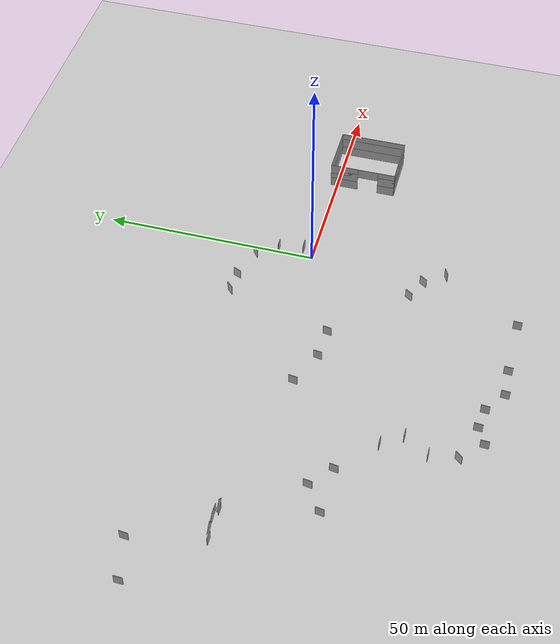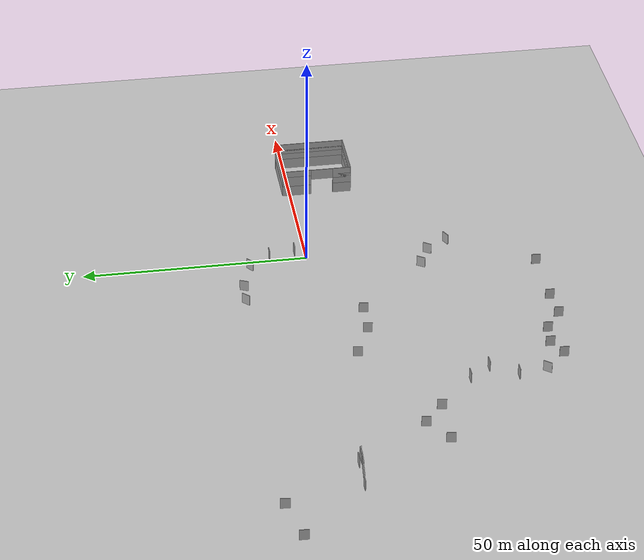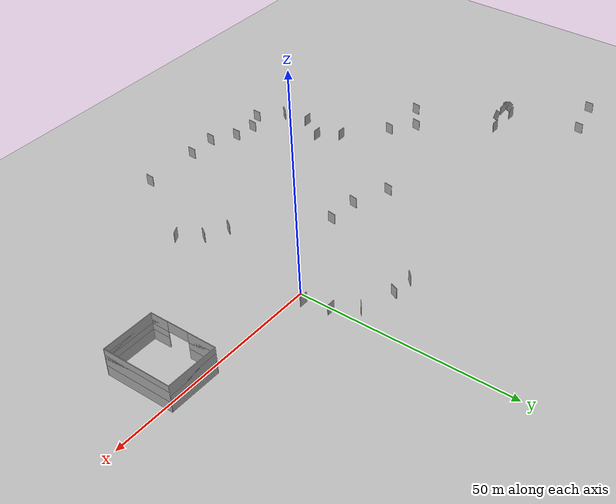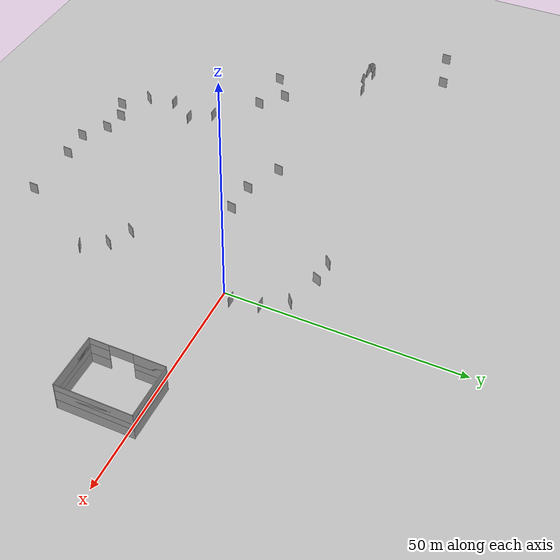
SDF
<sdf version="1.6">
 <world name="default">
  <model name="ground_plane">
   <static>1</static>
   <link name="link">
    <collision name="collision">
     <geometry><plane><normal>0 0 1</normal><size>100 100</size></plane></geometry>
     <surface><friction><ode><mu>100</mu><mu2>50</mu2></ode></friction></surface>
    </collision>
    <visual name="visual">
     <cast_shadows>0</cast_shadows>
     <geometry><plane><normal>0 0 1</normal><size>100 100</size></plane></geometry>
     <material>
      <script><uri>file://media/materials/scripts/gazebo.material</uri><name>Gazebo/Grey</name></script>
     </material>
    </visual>
   </link>
  </model>
  <model name="PaperTestTunnelHouse">
   <pose>31.9195 -6.3195 0 0 -0 0</pose>
   <link name="Wall_10">
    <collision name="Wall_10_Collision">
     <geometry><box><size>4.25 0.15 2.5</size></box></geometry>
     <pose>0 0 1.25 0 -0 0</pose>
    </collision>
    <visual name="Wall_10_Visual">
     <pose>0 0 1.25 0 -0 0</pose>
     <geometry><box><size>4.25 0.15 2.5</size></box></geometry>
     <material>
      <script><uri>file://media/materials/scripts/gazebo.material</uri><name>Gazebo/Grey</name></script>
      <ambient>1 1 1 1</ambient>
     </material>
     <meta><layer>0</layer></meta>
    </visual>
    <pose>-5.925 -5.875 0 0 -0 1.5708</pose>
   </link>
   <link name="Wall_6">
    <collision name="Wall_6_Collision">
     <geometry><box><size>6.75 0.15 2.5</size></box></geometry>
     <pose>0 0 1.25 0 -0 0</pose>
    </collision>
    <visual name="Wall_6_Visual">
     <pose>0 0 1.25 0 -0 0</pose>
     <geometry><box><size>6.75 0.15 2.5</size></box></geometry>
     <material>
      <script><uri>file://media/materials/scripts/gazebo.material</uri><name>Gazebo/Grey</name></script>
      <ambient>1 1 1 1</ambient>
     </material>
     <meta><layer>0</layer></meta>
    </visual>
    <pose>-5.925 4.625 0 0 -0 1.5708</pose>
   </link>
   <link name="Wall_7">
    <collision name="Wall_7_Collision">
     <geometry><box><size>12 0.15 2.5</size></box></geometry>
     <pose>0 0 1.25 0 -0 0</pose>
    </collision>
    <visual name="Wall_7_Visual">
     <pose>0 0 1.25 0 -0 0</pose>
     <geometry><box><size>12 0.15 2.5</size></box></geometry>
     <material>
      <script><uri>file://media/materials/scripts/gazebo.material</uri><name>Gazebo/Grey</name></script>
      <ambient>1 1 1 1</ambient>
     </material>
     <meta><layer>0</layer></meta>
    </visual>
    <pose>-0 7.925 0 0 -0 0</pose>
   </link>
   <link name="Wall_8">
    <collision name="Wall_8_Collision">
     <geometry><box><size>16 0.15 2.5</size></box></geometry>
     <pose>0 0 1.25 0 -0 0</pose>
    </collision>
    <visual name="Wall_8_Visual">
     <pose>0 0 1.25 0 -0 0</pose>
     <geometry><box><size>16 0.15 2.5</size></box></geometry>
     <material>
      <script><uri>file://media/materials/scripts/gazebo.material</uri><name>Gazebo/Grey</name></script>
      <ambient>1 1 1 1</ambient>
     </material>
     <meta><layer>0</layer></meta>
    </visual>
    <pose>5.925 0 0 0 -0 -1.5708</pose>
   </link>
   <link name="Wall_9">
    <collision name="Wall_9_Collision">
     <geometry><box><size>12 0.15 2.5</size></box></geometry>
     <pose>0 0 1.25 0 -0 0</pose>
    </collision>
    <visual name="Wall_9_Visual">
     <pose>0 0 1.25 0 -0 0</pose>
     <geometry><box><size>12 0.15 2.5</size></box></geometry>
     <material>
      <script><uri>file://media/materials/scripts/gazebo.material</uri><name>Gazebo/Grey</name></script>
      <ambient>1 1 1 1</ambient>
     </material>
     <meta><layer>0</layer></meta>
    </visual>
    <pose>-0 -7.925 0 0 -0 3.14159</pose>
   </link>
   <static>1</static>
  </model>
  <model name="PaperTestTunnelHouse_0">
   <pose>31.9195 -6.319 2.5 0 -0 0</pose>
   <link name="Wall_10">
    <collision name="Wall_10_Collision">
     <geometry><box><size>4.25 0.15 2.5</size></box></geometry>
     <pose>0 0 1.25 0 -0 0</pose>
    </collision>
    <visual name="Wall_10_Visual">
     <pose>0 0 1.25 0 -0 0</pose>
     <geometry><box><size>4.25 0.15 2.5</size></box></geometry>
     <material>
      <script><uri>file://media/materials/scripts/gazebo.material</uri><name>Gazebo/Grey</name></script>
      <ambient>1 1 1 1</ambient>
     </material>
     <meta><layer>0</layer></meta>
    </visual>
    <pose>-5.925 -5.875 0 0 -0 1.5708</pose>
   </link>
   <link name="Wall_6">
    <collision name="Wall_6_Collision">
     <geometry><box><size>6.75 0.15 2.5</size></box></geometry>
     <pose>0 0 1.25 0 -0 0</pose>
    </collision>
    <visual name="Wall_6_Visual">
     <pose>0 0 1.25 0 -0 0</pose>
     <geometry><box><size>6.75 0.15 2.5</size></box></geometry>
     <material>
      <script><uri>file://media/materials/scripts/gazebo.material</uri><name>Gazebo/Grey</name></script>
      <ambient>1 1 1 1</ambient>
     </material>
     <meta><layer>0</layer></meta>
    </visual>
    <pose>-5.925 4.625 0 0 -0 1.5708</pose>
   </link>
   <link name="Wall_7">
    <collision name="Wall_7_Collision">
     <geometry><box><size>12 0.15 2.5</size></box></geometry>
     <pose>0 0 1.25 0 -0 0</pose>
    </collision>
    <visual name="Wall_7_Visual">
     <pose>0 0 1.25 0 -0 0</pose>
     <geometry><box><size>12 0.15 2.5</size></box></geometry>
     <material>
      <script><uri>file://media/materials/scripts/gazebo.material</uri><name>Gazebo/Grey</name></script>
      <ambient>1 1 1 1</ambient>
     </material>
     <meta><layer>0</layer></meta>
    </visual>
    <pose>-0 7.925 0 0 -0 0</pose>
   </link>
   <link name="Wall_8">
    <collision name="Wall_8_Collision">
     <geometry><box><size>16 0.15 2.5</size></box></geometry>
     <pose>0 0 1.25 0 -0 0</pose>
    </collision>
    <visual name="Wall_8_Visual">
     <pose>0 0 1.25 0 -0 0</pose>
     <geometry><box><size>16 0.15 2.5</size></box></geometry>
     <material>
      <script><uri>file://media/materials/scripts/gazebo.material</uri><name>Gazebo/Grey</name></script>
      <ambient>1 1 1 1</ambient>
     </material>
     <meta><layer>0</layer></meta>
    </visual>
    <pose>5.925 0 0 0 -0 -1.5708</pose>
   </link>
   <link name="Wall_9">
    <collision name="Wall_9_Collision">
     <geometry><box><size>12 0.15 2.5</size></box></geometry>
     <pose>0 0 1.25 0 -0 0</pose>
    </collision>
    <visual name="Wall_9_Visual">
     <pose>0 0 1.25 0 -0 0</pose>
     <geometry><box><size>12 0.15 2.5</size></box></geometry>
     <material>
      <script><uri>file://media/materials/scripts/gazebo.material</uri><name>Gazebo/Grey</name></script>
      <ambient>1 1 1 1</ambient>
     </material>
     <meta><layer>0</layer></meta>
    </visual>
    <pose>-0 -7.925 0 0 -0 3.14159</pose>
   </link>
   <static>1</static>
  </model>
  <model name="5mWall">
   <pose>25.971 -7.56033 4 0 -0 0</pose>
   <link name="Wall_0">
    <collision name="Wall_0_Collision">
     <geometry><box><size>5 0.15 2.5</size></box></geometry>
     <pose>0 0 1.25 0 -0 0</pose>
    </collision>
    <visual name="Wall_0_Visual">
     <pose>0 0 1.25 0 -0 0</pose>
     <geometry><box><size>5 0.15 2.5</size></box></geometry>
     <material>
      <script><uri>file://media/materials/scripts/gazebo.material</uri><name>Gazebo/Grey</name></script>
      <ambient>1 1 1 1</ambient>
     </material>
     <meta><layer>0</layer></meta>
    </visual>
    <pose>0 -0 0 0 -0 1.5708</pose>
   </link>
   <static>1</static>
  </model>
  <model name="PaperTestTunnelHouse_1">
   <pose>31.9195 -6.319 4 0 -0 0</pose>
   <link name="Wall_10">
    <collision name="Wall_10_Collision">
     <geometry><box><size>4.25 0.15 2.5</size></box></geometry>
     <pose>0 0 1.25 0 -0 0</pose>
    </collision>
    <visual name="Wall_10_Visual">
     <pose>0 0 1.25 0 -0 0</pose>
     <geometry><box><size>4.25 0.15 2.5</size></box></geometry>
     <material>
      <script><uri>file://media/materials/scripts/gazebo.material</uri><name>Gazebo/Grey</name></script>
      <ambient>1 1 1 1</ambient>
     </material>
     <meta><layer>0</layer></meta>
    </visual>
    <pose>-5.925 -5.875 0 0 -0 1.5708</pose>
   </link>
   <link name="Wall_6">
    <collision name="Wall_6_Collision">
     <geometry><box><size>6.75 0.15 2.5</size></box></geometry>
     <pose>0 0 1.25 0 -0 0</pose>
    </collision>
    <visual name="Wall_6_Visual">
     <pose>0 0 1.25 0 -0 0</pose>
     <geometry><box><size>6.75 0.15 2.5</size></box></geometry>
     <material>
      <script><uri>file://media/materials/scripts/gazebo.material</uri><name>Gazebo/Grey</name></script>
      <ambient>1 1 1 1</ambient>
     </material>
     <meta><layer>0</layer></meta>
    </visual>
    <pose>-5.925 4.625 0 0 -0 1.5708</pose>
   </link>
   <link name="Wall_7">
    <collision name="Wall_7_Collision">
     <geometry><box><size>12 0.15 2.5</size></box></geometry>
     <pose>0 0 1.25 0 -0 0</pose>
    </collision>
    <visual name="Wall_7_Visual">
     <pose>0 0 1.25 0 -0 0</pose>
     <geometry><box><size>12 0.15 2.5</size></box></geometry>
     <material>
      <script><uri>file://media/materials/scripts/gazebo.material</uri><name>Gazebo/Grey</name></script>
      <ambient>1 1 1 1</ambient>
     </material>
     <meta><layer>0</layer></meta>
    </visual>
    <pose>-0 7.925 0 0 -0 0</pose>
   </link>
   <link name="Wall_8">
    <collision name="Wall_8_Collision">
     <geometry><box><size>16 0.15 2.5</size></box></geometry>
     <pose>0 0 1.25 0 -0 0</pose>
    </collision>
    <visual name="Wall_8_Visual">
     <pose>0 0 1.25 0 -0 0</pose>
     <geometry><box><size>16 0.15 2.5</size></box></geometry>
     <material>
      <script><uri>file://media/materials/scripts/gazebo.material</uri><name>Gazebo/Grey</name></script>
      <ambient>1 1 1 1</ambient>
     </material>
     <meta><layer>0</layer></meta>
    </visual>
    <pose>5.925 0 0 0 -0 -1.5708</pose>
   </link>
   <link name="Wall_9">
    <collision name="Wall_9_Collision">
     <geometry><box><size>12 0.15 2.5</size></box></geometry>
     <pose>0 0 1.25 0 -0 0</pose>
    </collision>
    <visual name="Wall_9_Visual">
     <pose>0 0 1.25 0 -0 0</pose>
     <geometry><box><size>12 0.15 2.5</size></box></geometry>
     <material>
      <script><uri>file://media/materials/scripts/gazebo.material</uri><name>Gazebo/Grey</name></script>
      <ambient>1 1 1 1</ambient>
     </material>
     <meta><layer>0</layer></meta>
    </visual>
    <pose>-0 -7.925 0 0 -0 3.14159</pose>
   </link>
   <static>1</static>
  </model>
  <model name="2mWall_3">
   <pose>2.10228 2.41901 0 0 -0 0</pose>
   <link name="Wall_0">
    <collision name="Wall_0_Collision">
     <geometry><box><size>2 0.15 2.5</size></box></geometry>
     <pose>0 0 1.25 0 -0 0</pose>
    </collision>
    <visual name="Wall_0_Visual">
     <pose>0 0 1.25 0 -0 0</pose>
     <geometry><box><size>2 0.15 2.5</size></box></geometry>
     <material>
      <script><uri>file://media/materials/scripts/gazebo.material</uri><name>Gazebo/Grey</name></script>
      <ambient>1 1 1 1</ambient>
     </material>
     <meta><layer>0</layer></meta>
    </visual>
   </link>
   <static>1</static>
  </model>
  <model name="2mWall_4">
   <pose>-10.1702 15.3219 0 0 -0 1.16983</pose>
   <link name="Wall_0">
    <collision name="Wall_0_Collision">
     <geometry><box><size>2 0.15 2.5</size></box></geometry>
     <pose>0 0 1.25 0 -0 0</pose>
    </collision>
    <visual name="Wall_0_Visual">
     <pose>0 0 1.25 0 -0 0</pose>
     <geometry><box><size>2 0.15 2.5</size></box></geometry>
     <material>
      <script><uri>file://media/materials/scripts/gazebo.material</uri><name>Gazebo/Grey</name></script>
      <ambient>1 1 1 1</ambient>
     </material>
     <meta><layer>0</layer></meta>
    </visual>
   </link>
   <static>1</static>
  </model>
  <model name="2mWall_7">
   <pose>-49.3322 -27.3207 0 0 -0 0</pose>
   <link name="Wall_0">
    <collision name="Wall_0_Collision">
     <geometry><box><size>2 0.15 2.5</size></box></geometry>
     <pose>0 0 1.25 0 -0 0</pose>
    </collision>
    <visual name="Wall_0_Visual">
     <pose>0 0 1.25 0 -0 0</pose>
     <geometry><box><size>2 0.15 2.5</size></box></geometry>
     <material>
      <script><uri>file://media/materials/scripts/gazebo.material</uri><name>Gazebo/Grey</name></script>
      <ambient>1 1 1 1</ambient>
     </material>
     <meta><layer>0</layer></meta>
    </visual>
   </link>
   <static>1</static>
  </model>
  <model name="2mWall_11">
   <pose>-80.5459 0.435841 0 0 -0 0</pose>
   <link name="Wall_0">
    <collision name="Wall_0_Collision">
     <geometry><box><size>2 0.15 2.5</size></box></geometry>
     <pose>0 0 1.25 0 -0 0</pose>
    </collision>
    <visual name="Wall_0_Visual">
     <pose>0 0 1.25 0 -0 0</pose>
     <geometry><box><size>2 0.15 2.5</size></box></geometry>
     <material>
      <script><uri>file://media/materials/scripts/gazebo.material</uri><name>Gazebo/Grey</name></script>
      <ambient>1 1 1 1</ambient>
     </material>
     <meta><layer>0</layer></meta>
    </visual>
   </link>
   <static>1</static>
  </model>
  <model name="2mWall_11_clone">
   <pose>-73.3311 0.380501 0 0 -0 0</pose>
   <link name="Wall_0">
    <collision name="Wall_0_Collision">
     <geometry><box><size>2 0.15 2.5</size></box></geometry>
     <pose>0 0 1.25 0 -0 0</pose>
    </collision>
    <visual name="Wall_0_Visual">
     <pose>0 0 1.25 0 -0 0</pose>
     <geometry><box><size>2 0.15 2.5</size></box></geometry>
     <material>
      <script><uri>file://media/materials/scripts/gazebo.material</uri><name>Gazebo/Grey</name></script>
      <ambient>1 1 1 1</ambient>
     </material>
     <meta><layer>0</layer></meta>
    </visual>
   </link>
   <static>1</static>
  </model>
  <model name="2mWall_11_clone_0">
   <pose>-80.3991 0.506506 2.684 0 0.816528 0</pose>
   <link name="Wall_0">
    <collision name="Wall_0_Collision">
     <geometry><box><size>2 0.15 2.5</size></box></geometry>
     <pose>0 0 1.25 0 -0 0</pose>
    </collision>
    <visual name="Wall_0_Visual">
     <pose>0 0 1.25 0 -0 0</pose>
     <geometry><box><size>2 0.15 2.5</size></box></geometry>
     <material>
      <script><uri>file://media/materials/scripts/gazebo.material</uri><name>Gazebo/Grey</name></script>
      <ambient>1 1 1 1</ambient>
     </material>
     <meta><layer>0</layer></meta>
    </visual>
   </link>
   <static>1</static>
  </model>
  <model name="2mWall_11_clone_0_clone">
   <pose>-75.059 0.119832 2.90318 0 0.816528 0</pose>
   <link name="Wall_0">
    <collision name="Wall_0_Collision">
     <geometry><box><size>2 0.15 2.5</size></box></geometry>
     <pose>0 0 1.25 0 -0 0</pose>
    </collision>
    <visual name="Wall_0_Visual">
     <pose>0 0 1.25 0 -0 0</pose>
     <geometry><box><size>2 0.15 2.5</size></box></geometry>
     <material>
      <script><uri>file://media/materials/scripts/gazebo.material</uri><name>Gazebo/Grey</name></script>
      <ambient>1 1 1 1</ambient>
     </material>
     <meta><layer>0</layer></meta>
    </visual>
   </link>
   <static>1</static>
  </model>
  <model name="2mWall_11_clone_0_clone_0">
   <pose>-77.5474 0.489779 4.61692 3.14159 1.52824 3.14159</pose>
   <link name="Wall_0">
    <collision name="Wall_0_Collision">
     <geometry><box><size>2 0.15 2.5</size></box></geometry>
     <pose>0 0 1.25 0 -0 0</pose>
    </collision>
    <visual name="Wall_0_Visual">
     <pose>0 0 1.25 0 -0 0</pose>
     <geometry><box><size>2 0.15 2.5</size></box></geometry>
     <material>
      <script><uri>file://media/materials/scripts/gazebo.material</uri><name>Gazebo/Grey</name></script>
      <ambient>1 1 1 1</ambient>
     </material>
     <meta><layer>0</layer></meta>
    </visual>
   </link>
   <static>1</static>
  </model>
  <model name="2mWall_11_clone_0_clone_0_clone">
   <pose>-78.6518 0.388218 4.2827 0 1.18388 0</pose>
   <link name="Wall_0">
    <collision name="Wall_0_Collision">
     <geometry><box><size>2 0.15 2.5</size></box></geometry>
     <pose>0 0 1.25 0 -0 0</pose>
    </collision>
    <visual name="Wall_0_Visual">
     <pose>0 0 1.25 0 -0 0</pose>
     <geometry><box><size>2 0.15 2.5</size></box></geometry>
     <material>
      <script><uri>file://media/materials/scripts/gazebo.material</uri><name>Gazebo/Grey</name></script>
      <ambient>1 1 1 1</ambient>
     </material>
     <meta><layer>0</layer></meta>
    </visual>
   </link>
   <static>1</static>
  </model>
  <model name="2mWall">
   <pose>-34.7664 -47.2587 0 0 -0 1.51711</pose>
   <link name="Wall_0">
    <collision name="Wall_0_Collision">
     <geometry><box><size>2 0.15 2.5</size></box></geometry>
     <pose>0 0 1.25 0 -0 0</pose>
    </collision>
    <visual name="Wall_0_Visual">
     <pose>0 0 1.25 0 -0 0</pose>
     <geometry><box><size>2 0.15 2.5</size></box></geometry>
     <material>
      <script><uri>file://media/materials/scripts/gazebo.material</uri><name>Gazebo/Grey</name></script>
      <ambient>1 1 1 1</ambient>
     </material>
     <meta><layer>0</layer></meta>
    </visual>
   </link>
   <static>1</static>
  </model>
  <model name="2mWall_clone">
   <pose>-22.9675 -50.415 0 0 -0 1.51711</pose>
   <link name="Wall_0">
    <collision name="Wall_0_Collision">
     <geometry><box><size>2 0.15 2.5</size></box></geometry>
     <pose>0 0 1.25 0 -0 0</pose>
    </collision>
    <visual name="Wall_0_Visual">
     <pose>0 0 1.25 0 -0 0</pose>
     <geometry><box><size>2 0.15 2.5</size></box></geometry>
     <material>
      <script><uri>file://media/materials/scripts/gazebo.material</uri><name>Gazebo/Grey</name></script>
      <ambient>1 1 1 1</ambient>
     </material>
     <meta><layer>0</layer></meta>
    </visual>
   </link>
   <static>1</static>
  </model>
  <model name="2mWall_17">
   <pose>-84.3059 16.8578 0 0 -0 1.47872</pose>
   <link name="Wall_0">
    <collision name="Wall_0_Collision">
     <geometry><box><size>2 0.15 2.5</size></box></geometry>
     <pose>0 0 1.25 0 -0 0</pose>
    </collision>
    <visual name="Wall_0_Visual">
     <pose>0 0 1.25 0 -0 0</pose>
     <geometry><box><size>2 0.15 2.5</size></box></geometry>
     <material>
      <script><uri>file://media/materials/scripts/gazebo.material</uri><name>Gazebo/Grey</name></script>
      <ambient>1 1 1 1</ambient>
     </material>
     <meta><layer>0</layer></meta>
    </visual>
   </link>
   <static>1</static>
  </model>
  <model name="2mWall_18">
   <pose>-94.0413 14.5273 0 0 0 -1.59625</pose>
   <link name="Wall_0">
    <collision name="Wall_0_Collision">
     <geometry><box><size>2 0.15 2.5</size></box></geometry>
     <pose>0 0 1.25 0 -0 0</pose>
    </collision>
    <visual name="Wall_0_Visual">
     <pose>0 0 1.25 0 -0 0</pose>
     <geometry><box><size>2 0.15 2.5</size></box></geometry>
     <material>
      <script><uri>file://media/materials/scripts/gazebo.material</uri><name>Gazebo/Grey</name></script>
      <ambient>1 1 1 1</ambient>
     </material>
     <meta><layer>0</layer></meta>
    </visual>
   </link>
   <static>1</static>
  </model>
  <model name="2mWall_3_clone">
   <pose>0.934458 8.21854 0 0 -0 0.005789</pose>
   <link name="Wall_0">
    <collision name="Wall_0_Collision">
     <geometry><box><size>2 0.15 2.5</size></box></geometry>
     <pose>0 0 1.25 0 -0 0</pose>
    </collision>
    <visual name="Wall_0_Visual">
     <pose>0 0 1.25 0 -0 0</pose>
     <geometry><box><size>2 0.15 2.5</size></box></geometry>
     <material>
      <script><uri>file://media/materials/scripts/gazebo.material</uri><name>Gazebo/Grey</name></script>
      <ambient>1 1 1 1</ambient>
     </material>
     <meta><layer>0</layer></meta>
    </visual>
   </link>
   <static>1</static>
  </model>
  <model name="2mWall_3_clone_clone">
   <pose>-2.39772 13.0333 0 0 -0 0.683141</pose>
   <link name="Wall_0">
    <collision name="Wall_0_Collision">
     <geometry><box><size>2 0.15 2.5</size></box></geometry>
     <pose>0 0 1.25 0 -0 0</pose>
    </collision>
    <visual name="Wall_0_Visual">
     <pose>0 0 1.25 0 -0 0</pose>
     <geometry><box><size>2 0.15 2.5</size></box></geometry>
     <material>
      <script><uri>file://media/materials/scripts/gazebo.material</uri><name>Gazebo/Grey</name></script>
      <ambient>1 1 1 1</ambient>
     </material>
     <meta><layer>0</layer></meta>
    </visual>
   </link>
   <static>1</static>
  </model>
  <model name="2mWall_32">
   <pose>-29.353 -8.92586 0 0 0 -1.72426</pose>
   <link name="Wall_0">
    <collision name="Wall_0_Collision">
     <geometry><box><size>2 0.15 2.5</size></box></geometry>
     <pose>0 0 1.25 0 -0 0</pose>
    </collision>
    <visual name="Wall_0_Visual">
     <pose>0 0 1.25 0 -0 0</pose>
     <geometry><box><size>2 0.15 2.5</size></box></geometry>
     <material>
      <script><uri>file://media/materials/scripts/gazebo.material</uri><name>Gazebo/Grey</name></script>
      <ambient>1 1 1 1</ambient>
     </material>
     <meta><layer>0</layer></meta>
    </visual>
   </link>
   <static>1</static>
  </model>
  <model name="2mWall_33">
   <pose>-6.72212 -24.8225 0 0 -0 0.993249</pose>
   <link name="Wall_0">
    <collision name="Wall_0_Collision">
     <geometry><box><size>2 0.15 2.5</size></box></geometry>
     <pose>0 0 1.25 0 -0 0</pose>
    </collision>
    <visual name="Wall_0_Visual">
     <pose>0 0 1.25 0 -0 0</pose>
     <geometry><box><size>2 0.15 2.5</size></box></geometry>
     <material>
      <script><uri>file://media/materials/scripts/gazebo.material</uri><name>Gazebo/Grey</name></script>
      <ambient>1 1 1 1</ambient>
     </material>
     <meta><layer>0</layer></meta>
    </visual>
   </link>
   <static>1</static>
  </model>
  <model name="2mWall_33_clone">
   <pose>-1.67331 -27.2035 0 0 -0 0.993249</pose>
   <link name="Wall_0">
    <collision name="Wall_0_Collision">
     <geometry><box><size>2 0.15 2.5</size></box></geometry>
     <pose>0 0 1.25 0 -0 0</pose>
    </collision>
    <visual name="Wall_0_Visual">
     <pose>0 0 1.25 0 -0 0</pose>
     <geometry><box><size>2 0.15 2.5</size></box></geometry>
     <material>
      <script><uri>file://media/materials/scripts/gazebo.material</uri><name>Gazebo/Grey</name></script>
      <ambient>1 1 1 1</ambient>
     </material>
     <meta><layer>0</layer></meta>
    </visual>
   </link>
   <static>1</static>
  </model>
  <model name="2mWall_33_clone_0">
   <pose>1.6673 -32.0108 0 0 -0 0.463512</pose>
   <link name="Wall_0">
    <collision name="Wall_0_Collision">
     <geometry><box><size>2 0.15 2.5</size></box></geometry>
     <pose>0 0 1.25 0 -0 0</pose>
    </collision>
    <visual name="Wall_0_Visual">
     <pose>0 0 1.25 0 -0 0</pose>
     <geometry><box><size>2 0.15 2.5</size></box></geometry>
     <material>
      <script><uri>file://media/materials/scripts/gazebo.material</uri><name>Gazebo/Grey</name></script>
      <ambient>1 1 1 1</ambient>
     </material>
     <meta><layer>0</layer></meta>
    </visual>
   </link>
   <static>1</static>
  </model>
  <model name="2mWall_4_clone_0">
   <pose>-15.2911 15.5794 0 0 -0 0.804554</pose>
   <link name="Wall_0">
    <collision name="Wall_0_Collision">
     <geometry><box><size>2 0.15 2.5</size></box></geometry>
     <pose>0 0 1.25 0 -0 0</pose>
    </collision>
    <visual name="Wall_0_Visual">
     <pose>0 0 1.25 0 -0 0</pose>
     <geometry><box><size>2 0.15 2.5</size></box></geometry>
     <material>
      <script><uri>file://media/materials/scripts/gazebo.material</uri><name>Gazebo/Grey</name></script>
      <ambient>1 1 1 1</ambient>
     </material>
     <meta><layer>0</layer></meta>
    </visual>
   </link>
   <static>1</static>
  </model>
  <model name="2mWall_32_clone">
   <pose>-37.5355 -5.41311 0 0 0 -1.72426</pose>
   <link name="Wall_0">
    <collision name="Wall_0_Collision">
     <geometry><box><size>2 0.15 2.5</size></box></geometry>
     <pose>0 0 1.25 0 -0 0</pose>
    </collision>
    <visual name="Wall_0_Visual">
     <pose>0 0 1.25 0 -0 0</pose>
     <geometry><box><size>2 0.15 2.5</size></box></geometry>
     <material>
      <script><uri>file://media/materials/scripts/gazebo.material</uri><name>Gazebo/Grey</name></script>
      <ambient>1 1 1 1</ambient>
     </material>
     <meta><layer>0</layer></meta>
    </visual>
   </link>
   <static>1</static>
  </model>
  <model name="2mWall_32_clone_0">
   <pose>-22.0375 -9.25022 0 0 0 -1.72426</pose>
   <link name="Wall_0">
    <collision name="Wall_0_Collision">
     <geometry><box><size>2 0.15 2.5</size></box></geometry>
     <pose>0 0 1.25 0 -0 0</pose>
    </collision>
    <visual name="Wall_0_Visual">
     <pose>0 0 1.25 0 -0 0</pose>
     <geometry><box><size>2 0.15 2.5</size></box></geometry>
     <material>
      <script><uri>file://media/materials/scripts/gazebo.material</uri><name>Gazebo/Grey</name></script>
      <ambient>1 1 1 1</ambient>
     </material>
     <meta><layer>0</layer></meta>
    </visual>
   </link>
   <static>1</static>
  </model>
  <model name="2mWall_clone_0">
   <pose>-43.9002 -48.6826 0 0 -0 1.51711</pose>
   <link name="Wall_0">
    <collision name="Wall_0_Collision">
     <geometry><box><size>2 0.15 2.5</size></box></geometry>
     <pose>0 0 1.25 0 -0 0</pose>
    </collision>
    <visual name="Wall_0_Visual">
     <pose>0 0 1.25 0 -0 0</pose>
     <geometry><box><size>2 0.15 2.5</size></box></geometry>
     <material>
      <script><uri>file://media/materials/scripts/gazebo.material</uri><name>Gazebo/Grey</name></script>
      <ambient>1 1 1 1</ambient>
     </material>
     <meta><layer>0</layer></meta>
    </visual>
   </link>
   <static>1</static>
  </model>
  <model name="2mWall_clone_1">
   <pose>-48.6431 -44.0115 0 0 -0 0.916756</pose>
   <link name="Wall_0">
    <collision name="Wall_0_Collision">
     <geometry><box><size>2 0.15 2.5</size></box></geometry>
     <pose>0 0 1.25 0 -0 0</pose>
    </collision>
    <visual name="Wall_0_Visual">
     <pose>0 0 1.25 0 -0 0</pose>
     <geometry><box><size>2 0.15 2.5</size></box></geometry>
     <material>
      <script><uri>file://media/materials/scripts/gazebo.material</uri><name>Gazebo/Grey</name></script>
      <ambient>1 1 1 1</ambient>
     </material>
     <meta><layer>0</layer></meta>
    </visual>
   </link>
   <static>1</static>
  </model>
  <model name="2mWall_clone_clone">
   <pose>-29.7086 -50.8085 0 0 -0 1.51711</pose>
   <link name="Wall_0">
    <collision name="Wall_0_Collision">
     <geometry><box><size>2 0.15 2.5</size></box></geometry>
     <pose>0 0 1.25 0 -0 0</pose>
    </collision>
    <visual name="Wall_0_Visual">
     <pose>0 0 1.25 0 -0 0</pose>
     <geometry><box><size>2 0.15 2.5</size></box></geometry>
     <material>
      <script><uri>file://media/materials/scripts/gazebo.material</uri><name>Gazebo/Grey</name></script>
      <ambient>1 1 1 1</ambient>
     </material>
     <meta><layer>0</layer></meta>
    </visual>
   </link>
   <static>1</static>
  </model>
  <model name="2mWall_clone_2">
   <pose>-39.8425 -46.6163 0 0 -0 1.51711</pose>
   <link name="Wall_0">
    <collision name="Wall_0_Collision">
     <geometry><box><size>2 0.15 2.5</size></box></geometry>
     <pose>0 0 1.25 0 -0 0</pose>
    </collision>
    <visual name="Wall_0_Visual">
     <pose>0 0 1.25 0 -0 0</pose>
     <geometry><box><size>2 0.15 2.5</size></box></geometry>
     <material>
      <script><uri>file://media/materials/scripts/gazebo.material</uri><name>Gazebo/Grey</name></script>
      <ambient>1 1 1 1</ambient>
     </material>
     <meta><layer>0</layer></meta>
    </visual>
   </link>
   <static>1</static>
  </model>
  <model name="2mWall_7_clone">
   <pose>-49.5724 -37.7219 0 0 -0 0</pose>
   <link name="Wall_0">
    <collision name="Wall_0_Collision">
     <geometry><box><size>2 0.15 2.5</size></box></geometry>
     <pose>0 0 1.25 0 -0 0</pose>
    </collision>
    <visual name="Wall_0_Visual">
     <pose>0 0 1.25 0 -0 0</pose>
     <geometry><box><size>2 0.15 2.5</size></box></geometry>
     <material>
      <script><uri>file://media/materials/scripts/gazebo.material</uri><name>Gazebo/Grey</name></script>
      <ambient>1 1 1 1</ambient>
     </material>
     <meta><layer>0</layer></meta>
    </visual>
   </link>
   <static>1</static>
  </model>
  <model name="2mWall_7_clone_0">
   <pose>-46.0027 -31.9984 0 0 -0 0</pose>
   <link name="Wall_0">
    <collision name="Wall_0_Collision">
     <geometry><box><size>2 0.15 2.5</size></box></geometry>
     <pose>0 0 1.25 0 -0 0</pose>
    </collision>
    <visual name="Wall_0_Visual">
     <pose>0 0 1.25 0 -0 0</pose>
     <geometry><box><size>2 0.15 2.5</size></box></geometry>
     <material>
      <script><uri>file://media/materials/scripts/gazebo.material</uri><name>Gazebo/Grey</name></script>
      <ambient>1 1 1 1</ambient>
     </material>
     <meta><layer>0</layer></meta>
    </visual>
   </link>
   <static>1</static>
  </model>
  <model name="2mWall_clone_clone_0">
   <pose>-9.44999 -50.3989 0 0 -0 1.51711</pose>
   <link name="Wall_0">
    <collision name="Wall_0_Collision">
     <geometry><box><size>2 0.15 2.5</size></box></geometry>
     <pose>0 0 1.25 0 -0 0</pose>
    </collision>
    <visual name="Wall_0_Visual">
     <pose>0 0 1.25 0 -0 0</pose>
     <geometry><box><size>2 0.15 2.5</size></box></geometry>
     <material>
      <script><uri>file://media/materials/scripts/gazebo.material</uri><name>Gazebo/Grey</name></script>
      <ambient>1 1 1 1</ambient>
     </material>
     <meta><layer>0</layer></meta>
    </visual>
   </link>
   <static>1</static>
  </model>
  <model name="2mWall_32_clone_clone">
   <pose>-62.9882 -15.3175 0 0 0 -1.72426</pose>
   <link name="Wall_0">
    <collision name="Wall_0_Collision">
     <geometry><box><size>2 0.15 2.5</size></box></geometry>
     <pose>0 0 1.25 0 -0 0</pose>
    </collision>
    <visual name="Wall_0_Visual">
     <pose>0 0 1.25 0 -0 0</pose>
     <geometry><box><size>2 0.15 2.5</size></box></geometry>
     <material>
      <script><uri>file://media/materials/scripts/gazebo.material</uri><name>Gazebo/Grey</name></script>
      <ambient>1 1 1 1</ambient>
     </material>
     <meta><layer>0</layer></meta>
    </visual>
   </link>
   <static>1</static>
  </model>
  <model name="2mWall_32_clone_clone_0">
   <pose>-68.8791 -19.322 0 0 0 -1.72426</pose>
   <link name="Wall_0">
    <collision name="Wall_0_Collision">
     <geometry><box><size>2 0.15 2.5</size></box></geometry>
     <pose>0 0 1.25 0 -0 0</pose>
    </collision>
    <visual name="Wall_0_Visual">
     <pose>0 0 1.25 0 -0 0</pose>
     <geometry><box><size>2 0.15 2.5</size></box></geometry>
     <material>
      <script><uri>file://media/materials/scripts/gazebo.material</uri><name>Gazebo/Grey</name></script>
      <ambient>1 1 1 1</ambient>
     </material>
     <meta><layer>0</layer></meta>
    </visual>
   </link>
   <static>1</static>
  </model>
  <model name="2mWall_32_clone_clone_clone">
   <pose>-57.8753 -19.5619 0 0 0 -1.72426</pose>
   <link name="Wall_0">
    <collision name="Wall_0_Collision">
     <geometry><box><size>2 0.15 2.5</size></box></geometry>
     <pose>0 0 1.25 0 -0 0</pose>
    </collision>
    <visual name="Wall_0_Visual">
     <pose>0 0 1.25 0 -0 0</pose>
     <geometry><box><size>2 0.15 2.5</size></box></geometry>
     <material>
      <script><uri>file://media/materials/scripts/gazebo.material</uri><name>Gazebo/Grey</name></script>
      <ambient>1 1 1 1</ambient>
     </material>
     <meta><layer>0</layer></meta>
    </visual>
   </link>
   <static>1</static>
  </model>
 </world>
</sdf>
